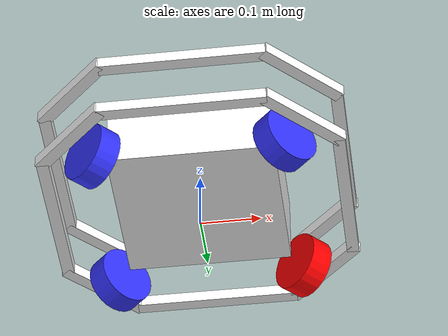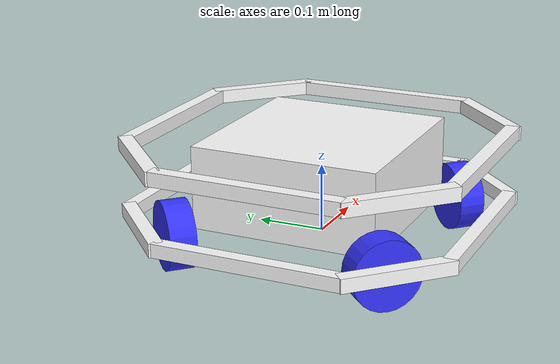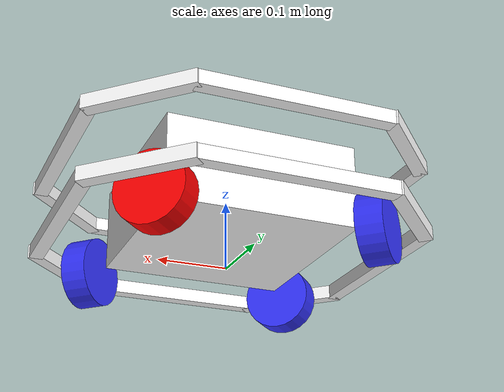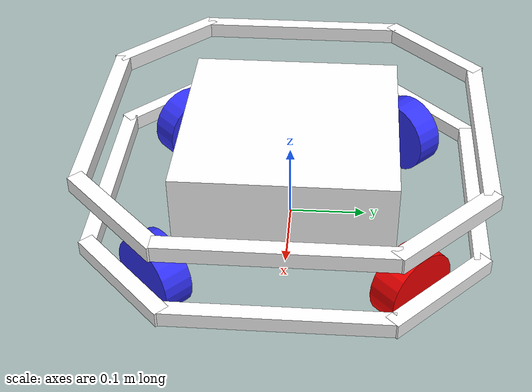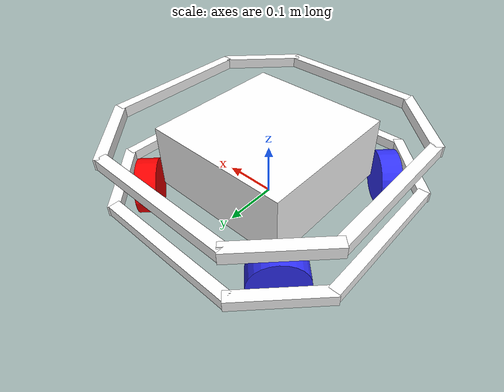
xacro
<?xml version="1.0"?>
<robot xmlns:xacro="http://www.ros.org/wiki/xacro" name="robot">

    <xacro:include filename="inertial_macros.xacro" />
    <xacro:include filename="materials.xacro" />

    <xacro:include filename="robot_core.xacro" />
    <xacro:include filename="robot_level_1.xacro" />
    <xacro:include filename="robot_level_2.xacro" />
    <xacro:include filename="robot_level_3.xacro" />

</robot>

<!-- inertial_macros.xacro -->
<robot xmlns:xacro="http://www.ros.org/wiki/xacro">

    <!-- Specify some standard inertial calculations
    https://en.wikipedia.org/wiki/List_of_moments_of_inertia -->
    <!-- These make use of xacro's mathematical functionality -->

    <xacro:macro name="inertial_cylinder" params="mass length radius *origin">
        <inertial>
            <xacro:insert_block name="origin" />
            <mass value="${mass}" />
            <inertia
                ixx="${(1/12) * mass * (3*radius*radius + length*length)}"
                ixy="0.0"
                iyy="${(1/12) * mass * (3*radius*radius + length*length)}"
                iyz="0.0"
                izz="${(1/2) * mass * (radius*radius)}"
            />
        </inertial>
    </xacro:macro>

    <xacro:macro name="inertial_box" params="mass x y z *origin">
        <inertial>
            <xacro:insert_block name="origin" />
            <mass value="${mass}" />
            <inertia
                ixx="${(1/12) * mass * (y*y + z*z)}"
                ixy="0.0"
                ixz="0.0"
                iyy="${(1/12) * mass * (x*x + z*z)}"
                iyz="0.0"
                izz="${(1/12) * mass * (x*x + y*y)}"
            />
        </inertial>
    </xacro:macro>

    <xacro:macro name="inertial_sphere" params="mass radius *origin">
        <inertial>
            <xacro:insert_block name="origin" />
            <mass value="${mass}" />
            <inertia
                ixx="${(2/5) * mass * (radius*radius)}"
                ixy="0.0"
                ixz="0.0"
                iyy="${(2/5) * mass * (radius*radius)}"
                iyz="0.0"
                izz="${(2/5) * mass * (radius*radius)}"
            />
        </inertial>
    </xacro:macro>

</robot>

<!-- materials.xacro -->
<robot xmlns:xacro="http://www.ros.org/wiki/xacro">

    <material name="black">
        <color rgba="0 0 0 1" />
    </material>

    <material name="white">
        <color rgba="1 1 1 1" />
    </material>

    <material name="red">
        <color rgba="1 0 0 1" />
    </material>

    <material name="green">
        <color rgba="0.2 1 0.2 1" />
    </material>

    <material name="blue">
        <color rgba="0.2 0.2 1 1" />
    </material>

    <material name="yellow">
        <color rgba="1 1 0.6 1" />
    </material>

    <material name="teal">
        <color rgba="0.2 0.8 0.7 1" />
    </material>

    <material name="raspberry">
        <color rgba="0.7 0.1 0.4 1" />
    </material>

</robot>

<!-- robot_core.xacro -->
<robot xmlns:xacro="http://www.ros.org/wiki/xacro">

    <!-- ROBOT PROPERTIES -->
    <xacro:property name="metal_thickness" value="0.003" />
    <xacro:property name="metal_density" value="7850.0" />
    <!--
    mass = width * height * metal_thickness * metal_density
    mass = length * height * metal_thickness * metal_density
    -->

    <!-- CHASSIS & FRAME PROPS -->
    <xacro:property name="chassis_length" value="0.500" />
    <xacro:property name="chassis_width" value="0.500" />

    <xacro:property name="chassis_inner_length" value="0.272" />
    <xacro:property name="chassis_inner_width" value="0.272" />

    <xacro:property name="chassis_outer_side" value="0.272" />
    <xacro:property name="chassis_outer_corner" value="0.162" />
    <xacro:property name="chassis_outer_thickness" value="0.020" />

    <xacro:property name="chassis_height" value="0.120" />
    <xacro:property name="chassis_clearance" value="0.030" />

    <xacro:property name="chassis_empty_space_length" value="${(chassis_length - chassis_outer_thickness*4)/3}" />
    <xacro:property name="chassis_empty_space_width" value="${(chassis_width - chassis_outer_thickness*4)/3}" />

    <!-- WHEEL PROPS -->
    <xacro:property name="wheel_radius" value="0.050" />
    <xacro:property name="wheel_thickness" value="0.038" />

    <!-- BASE LINK -->
    <link name="base_link"></link>

    <!-- CHASSIS LINK -->
    <joint name="chassis_joint" type="fixed">
        <parent link="base_link" />
        <child link="chassis" />
        <origin xyz="0 0 0" />
    </joint>

    <link name="chassis">
        <visual>
            <origin xyz="0 0 ${chassis_height/2 + chassis_clearance}" />
            <geometry>
                <box size="${chassis_inner_length} ${chassis_inner_width} ${chassis_height}" />
            </geometry>
            <material name="white" />
        </visual>
        <collision>
            <origin xyz="0 0 ${chassis_height/2 + chassis_clearance}" />
            <geometry>
                <box size="${chassis_inner_length} ${chassis_inner_width} ${chassis_height}" />
            </geometry>
        </collision>
        <xacro:inertial_box mass="${chassis_inner_width * chassis_inner_length * metal_thickness * metal_density}"
            x="${chassis_inner_length}" y="${chassis_inner_width}" z="${chassis_height}">
            <origin xyz="0 0 ${chassis_height/2 + chassis_clearance}" rpy="0 0 0" />
        </xacro:inertial_box>
    </link>

    <gazebo reference="chassis">
        <material>Gazebo/White</material>
    </gazebo>

    <!-- WHEELS -->
    <!-- left wheel -->
    <joint name="left_wheel_joint" type="continuous">
        <parent link="base_link" />
        <child link="left_wheel" />
        <origin
            xyz="-${chassis_inner_length/2 + wheel_thickness/2} ${chassis_inner_width/2 + wheel_thickness/2} ${wheel_radius/2}"
            rpy="-${pi/2} 0 0.785" />
        <axis xyz="0 0 -1" />
    </joint>

    <link name="left_wheel">
        <visual>
            <geometry>
                <cylinder radius="${wheel_radius}" length="${wheel_thickness}" />
            </geometry>
            <material name="blue" />
        </visual>
        <collision>
            <geometry>
                <sphere radius="${wheel_radius}" />
            </geometry>
        </collision>{pi/2} <xacro:inertial_cylinder
            mass="1.0" length="${wheel_thickness}" radius="${wheel_radius}">
            <origin xyz="0 0 0" rpy="0 0 0" />
        </xacro:inertial_cylinder>
    </link>

    <gazebo reference="left_wheel">
        <material>Gazebo/Blue</material>
    </gazebo>

    <!-- front wheel -->
    <joint name="front_wheel_joint" type="continuous">
        <parent link="base_link" />
        <child link="front_wheel" />
        <origin
            xyz="${chassis_inner_length/2 + wheel_thickness/2} ${chassis_inner_width/2 + wheel_thickness/2} ${wheel_radius/2}"
            rpy="-${pi/2} 0 -0.785" />
        <axis xyz="0 0 -1" />
    </joint>

    <link name="front_wheel">
        <visual>
            <geometry>
                <cylinder radius="${wheel_radius}" length="${wheel_thickness}" />
            </geometry>
            <material name="red" />
        </visual>
        <collision>
            <geometry>
                <sphere radius="${wheel_radius}" />
            </geometry>
        </collision>
        <xacro:inertial_cylinder mass="1.0" length="${wheel_thickness}" radius="${wheel_radius}">
            <origin xyz="0 0 0" rpy="0 0 0" />
        </xacro:inertial_cylinder>
    </link>

    <gazebo reference="front_wheel">
        <material>Gazebo/Red</material>
    </gazebo>

    <!-- right wheel -->
    <joint name="right_wheel_joint" type="continuous">
        <parent link="base_link" />
        <child link="right_wheel" />
        <origin
            xyz="${chassis_inner_length/2 + wheel_thickness/2} -${chassis_inner_width/2 + wheel_thickness/2} ${wheel_radius/2}"
            rpy="${pi/2} ${pi} 0.785" />
        <axis xyz="0 0 -1" />
    </joint>

    <link name="right_wheel">
        <visual>
            <geometry>
                <cylinder radius="${wheel_radius}" length="${wheel_thickness}" />
            </geometry>
            <material name="blue" />
        </visual>
        <collision>
            <geometry>
                <sphere radius="${wheel_radius}" />
            </geometry>
        </collision>
        <xacro:inertial_cylinder mass="1.0" length="${wheel_thickness}" radius="${wheel_radius}">
            <origin xyz="0 0 0" rpy="0 0 0" />
        </xacro:inertial_cylinder>
    </link>

    <gazebo reference="right_wheel">
        <material>Gazebo/Blue</material>
    </gazebo>

    <!-- back wheel -->
    <joint name="back_wheel_joint" type="continuous">
        <parent link="base_link" />
        <child link="back_wheel" />
        <origin
            xyz="-${chassis_inner_length/2 + wheel_thickness/2} -${chassis_inner_width/2 + wheel_thickness/2} ${wheel_radius/2}"
            rpy="${pi/2} ${pi} -0.785" />
        <axis xyz="0 0 -1" />
    </joint>

    <link name="back_wheel">
        <visual>
            <geometry>
                <cylinder radius="${wheel_radius}" length="${wheel_thickness}" />
            </geometry>
            <material name="blue" />
        </visual>
        <collision>
            <geometry>
                <sphere radius="${wheel_radius}" />
            </geometry>
        </collision>
        <xacro:inertial_cylinder mass="1.0" length="${wheel_thickness}" radius="${wheel_radius}">
            <origin xyz="0 0 0" rpy="0 0 0" />
        </xacro:inertial_cylinder>
    </link>

    <gazebo reference="back_wheel">
        <material>Gazebo/Blue</material>
    </gazebo>

    <!--
        FRAME
    -->
    <!-- CORNERS -->
    <!-- left corner -->
    <joint name="frame_left_corner_top_joint" type="fixed">
        <parent link="base_link" />
        <child link="frame_left_corner_top" />
        <origin
            xyz="-${chassis_length/2 - chassis_empty_space_length/2 + chassis_outer_thickness*135/360} ${chassis_width/2 - chassis_empty_space_width/2 + chassis_outer_thickness*135/360} ${chassis_height + chassis_clearance - chassis_outer_thickness/2}"
            rpy="0 0 0.785" />
    </joint>

    <link name="frame_left_corner_top">
        <visual>
            <geometry>
                <box size="${chassis_outer_corner} ${chassis_outer_thickness} ${chassis_outer_thickness}" />
            </geometry>
            <material name="white" />
        </visual>
        <collision>
            <geometry>
                <box size="${chassis_outer_corner} ${chassis_outer_thickness} ${chassis_outer_thickness}" />
            </geometry>
        </collision>
        <xacro:inertial_box
            mass="${chassis_outer_corner * chassis_outer_thickness * metal_thickness * 4 * metal_density}"
            x="${chassis_outer_corner}" y="${chassis_outer_thickness}"
            z="${chassis_outer_thickness}">
            <origin xyz="0 0 0" rpy="0 0 0" />
        </xacro:inertial_box>
    </link>

    <gazebo reference="frame_left_corner_top">
        <material>Gazebo/White</material>
    </gazebo>

    <joint name="frame_left_corner_bottom_joint" type="fixed">
        <parent link="base_link" />
        <child link="frame_left_corner_bottom" />
        <origin
            xyz="-${chassis_length/2 - chassis_empty_space_length/2 + chassis_outer_thickness*135/360} ${chassis_width/2 - chassis_empty_space_width/2 + chassis_outer_thickness*135/360} ${chassis_clearance + chassis_outer_thickness/2}"
            rpy="0 0 0.785" />
    </joint>

    <link name="frame_left_corner_bottom">
        <visual>
            <geometry>
                <box size="${chassis_outer_corner} ${chassis_outer_thickness} ${chassis_outer_thickness}" />
            </geometry>
            <material name="white" />
        </visual>
        <collision>
            <geometry>
                <box size="${chassis_outer_corner} ${chassis_outer_thickness} ${chassis_outer_thickness}" />
            </geometry>
        </collision>
        <xacro:inertial_box
            mass="${chassis_outer_corner * chassis_outer_thickness * metal_thickness * 4 * metal_density}"
            x="${chassis_outer_corner}" y="${chassis_outer_thickness}"
            z="${chassis_outer_thickness}">
            <origin xyz="0 0 0" rpy="0 0 0" />
        </xacro:inertial_box>
    </link>

    <gazebo reference="frame_left_corner_bottom">
        <material>Gazebo/White</material>
    </gazebo>

    <!-- front corner -->
    <joint name="frame_front_corner_top_joint" type="fixed">
        <parent link="base_link" />
        <child link="frame_front_corner_top" />
        <origin
            xyz="${chassis_length/2 - chassis_empty_space_length/2 + chassis_outer_thickness*135/360} ${chassis_width/2 - chassis_empty_space_width/2 + chassis_outer_thickness*135/360} ${chassis_height + chassis_clearance - chassis_outer_thickness/2}"
            rpy="0 0 -0.785" />
    </joint>

    <link name="frame_front_corner_top">
        <visual>
            <geometry>
                <box size="${chassis_outer_corner} ${chassis_outer_thickness} ${chassis_outer_thickness}" />
            </geometry>
            <material name="white" />
        </visual>
        <collision>
            <geometry>
                <box size="${chassis_outer_corner} ${chassis_outer_thickness} ${chassis_outer_thickness}" />
            </geometry>
        </collision>
        <xacro:inertial_box
            mass="${chassis_outer_corner * chassis_outer_thickness * metal_thickness * 4 * metal_density}"
            x="${chassis_outer_corner}" y="${chassis_outer_thickness}"
            z="${chassis_outer_thickness}">
            <origin xyz="0 0 0" rpy="0 0 0" />
        </xacro:inertial_box>
    </link>

    <gazebo reference="frame_front_corner_top">
        <material>Gazebo/White</material>
    </gazebo>

    <joint name="frame_front_corner_bottom_joint" type="fixed">
        <parent link="base_link" />
        <child link="frame_front_corner_bottom" />
        <origin
            xyz="${chassis_length/2 - chassis_empty_space_length/2 + chassis_outer_thickness*135/360} ${chassis_width/2 - chassis_empty_space_width/2 + chassis_outer_thickness*135/360} ${chassis_clearance + chassis_outer_thickness/2}"
            rpy="0 0 -0.785" />
    </joint>

    <link name="frame_front_corner_bottom">
        <visual>
            <geometry>
                <box size="${chassis_outer_corner} ${chassis_outer_thickness} ${chassis_outer_thickness}" />
            </geometry>
            <material name="white" />
        </visual>
        <collision>
            <geometry>
                <box size="${chassis_outer_corner} ${chassis_outer_thickness} ${chassis_outer_thickness}" />
            </geometry>
        </collision>
        <xacro:inertial_box
            mass="${chassis_outer_corner * chassis_outer_thickness * metal_thickness * 4 * metal_density}"
            x="${chassis_outer_corner}" y="${chassis_outer_thickness}"
            z="${chassis_outer_thickness}">
            <origin xyz="0 0 0" rpy="0 0 0" />
        </xacro:inertial_box>
    </link>

    <gazebo reference="frame_front_corner_bottom">
        <material>Gazebo/White</material>
    </gazebo>

    <!-- right corner -->
    <joint name="frame_right_corner_top_joint" type="fixed">
        <parent link="base_link" />
        <child link="frame_right_corner_top" />
        <origin
            xyz="${chassis_length/2 - chassis_empty_space_length/2 + chassis_outer_thickness*135/360} -${chassis_width/2 - chassis_empty_space_width/2 + chassis_outer_thickness*135/360} ${chassis_height + chassis_clearance - chassis_outer_thickness/2}"
            rpy="0 0 0.785" />
    </joint>

    <link name="frame_right_corner_top">
        <visual>
            <geometry>
                <box size="${chassis_outer_corner} ${chassis_outer_thickness} ${chassis_outer_thickness}" />
            </geometry>
            <material name="white" />
        </visual>
        <collision>
            <geometry>
                <box size="${chassis_outer_corner} ${chassis_outer_thickness} ${chassis_outer_thickness}" />
            </geometry>
        </collision>
        <xacro:inertial_box
            mass="${chassis_outer_corner * chassis_outer_thickness * metal_thickness * 4 * metal_density}"
            x="${chassis_outer_corner}" y="${chassis_outer_thickness}"
            z="${chassis_outer_thickness}">
            <origin xyz="0 0 0" rpy="0 0 0" />
        </xacro:inertial_box>
    </link>

    <gazebo reference="frame_right_corner_top">
        <material>Gazebo/White</material>
    </gazebo>

    <joint name="frame_right_corner_bottom_joint" type="fixed">
        <parent link="base_link" />
        <child link="frame_right_corner_bottom" />
        <origin
            xyz="${chassis_length/2 - chassis_empty_space_length/2 + chassis_outer_thickness*135/360} -${chassis_width/2 - chassis_empty_space_width/2 + chassis_outer_thickness*135/360} ${chassis_clearance + chassis_outer_thickness/2}"
            rpy="0 0 0.785" />
    </joint>

    <link name="frame_right_corner_bottom">
        <visual>
            <geometry>
                <box size="${chassis_outer_corner} ${chassis_outer_thickness} ${chassis_outer_thickness}" />
            </geometry>
            <material name="white" />
        </visual>
        <collision>
            <geometry>
                <box size="${chassis_outer_corner} ${chassis_outer_thickness} ${chassis_outer_thickness}" />
            </geometry>
        </collision>
        <xacro:inertial_box
            mass="${chassis_outer_corner * chassis_outer_thickness * metal_thickness * 4 * metal_density}"
            x="${chassis_outer_corner}" y="${chassis_outer_thickness}"
            z="${chassis_outer_thickness}">
            <origin xyz="0 0 0" rpy="0 0 0" />
        </xacro:inertial_box>
    </link>

    <gazebo reference="frame_right_corner_bottom">
        <material>Gazebo/White</material>
    </gazebo>

    <!-- back corner -->
    <joint name="frame_back_corner_top_joint" type="fixed">
        <parent link="base_link" />
        <child link="frame_back_corner_top" />
        <origin
            xyz="-${chassis_length/2 - chassis_empty_space_length/2 + chassis_outer_thickness*135/360} -${chassis_width/2 - chassis_empty_space_width/2 + chassis_outer_thickness*135/360} ${chassis_height + chassis_clearance - chassis_outer_thickness/2}"
            rpy="0 0 -0.785" />
    </joint>

    <link name="frame_back_corner_top">
        <visual>
            <geometry>
                <box size="${chassis_outer_corner} ${chassis_outer_thickness} ${chassis_outer_thickness}" />
            </geometry>
            <material name="white" />
        </visual>
        <collision>
            <geometry>
                <box size="${chassis_outer_corner} ${chassis_outer_thickness} ${chassis_outer_thickness}" />
            </geometry>
        </collision>
        <xacro:inertial_box
            mass="${chassis_outer_corner * chassis_outer_thickness * metal_thickness * 4 * metal_density}"
            x="${chassis_outer_corner}" y="${chassis_outer_thickness}"
            z="${chassis_outer_thickness}">
            <origin xyz="0 0 0" rpy="0 0 0" />
        </xacro:inertial_box>
    </link>

    <gazebo reference="frame_back_corner_top">
        <material>Gazebo/White</material>
    </gazebo>

    <joint name="frame_back_corner_bottom_joint" type="fixed">
        <parent link="base_link" />
        <child link="frame_back_corner_bottom" />
        <origin
            xyz="-${chassis_length/2 - chassis_empty_space_length/2 + chassis_outer_thickness*135/360} -${chassis_width/2 - chassis_empty_space_width/2 + chassis_outer_thickness*135/360} ${chassis_clearance + chassis_outer_thickness/2}"
            rpy="0 0 -0.785" />
    </joint>

    <link name="frame_back_corner_bottom">
        <visual>
            <geometry>
                <box size="${chassis_outer_corner} ${chassis_outer_thickness} ${chassis_outer_thickness}" />
            </geometry>
            <material name="white" />
        </visual>
        <collision>
            <geometry>
                <box size="${chassis_outer_corner} ${chassis_outer_thickness} ${chassis_outer_thickness}" />
            </geometry>
        </collision>
        <xacro:inertial_box
            mass="${chassis_outer_corner * chassis_outer_thickness * metal_thickness * 4 * metal_density}"
            x="${chassis_outer_corner}" y="${chassis_outer_thickness}"
            z="${chassis_outer_thickness}">
            <origin xyz="0 0 0" rpy="0 0 0" />
        </xacro:inertial_box>
    </link>

    <gazebo reference="frame_back_corner_bottom">
        <material>Gazebo/White</material>
    </gazebo>

    <!-- SIDES -->
    <!-- left-front side -->
    <joint name="frame_left_front_side_top_joint" type="fixed">
        <parent link="base_link" />
        <child link="frame_left_front_side_top" />
        <origin
            xyz="0 ${chassis_width/2 - chassis_outer_thickness/2} ${chassis_height + chassis_clearance - chassis_outer_thickness/2}"
            rpy="0 0 0" />
    </joint>

    <link name="frame_left_front_side_top">
        <visual>
            <geometry>
                <box size="${chassis_outer_side} ${chassis_outer_thickness} ${chassis_outer_thickness}" />
            </geometry>
            <material name="white" />
        </visual>
        <collision>
            <geometry>
                <box size="${chassis_outer_side} ${chassis_outer_thickness} ${chassis_outer_thickness}" />
            </geometry>
        </collision>
        <xacro:inertial_box
            mass="${chassis_outer_side * chassis_outer_thickness * metal_thickness * 4 * metal_density}"
            x="${chassis_outer_side}" y="${chassis_outer_thickness}"
            z="${chassis_outer_thickness}">
            <origin xyz="0 0 0" rpy="0 0 0" />
        </xacro:inertial_box>
    </link>

    <gazebo reference="frame_left_front_side_top">
        <material>Gazebo/White</material>
    </gazebo>

    <joint name="frame_left_front_side_bottom_joint" type="fixed">
        <parent link="base_link" />
        <child link="frame_left_front_side_bottom" />
        <origin
            xyz="0 ${chassis_width/2 - chassis_outer_thickness/2} ${chassis_clearance + chassis_outer_thickness/2}"
            rpy="0 0 0" />
    </joint>

    <link name="frame_left_front_side_bottom">
        <visual>
            <geometry>
                <box size="${chassis_outer_side} ${chassis_outer_thickness} ${chassis_outer_thickness}" />
            </geometry>
            <material name="white" />
        </visual>
        <collision>
            <geometry>
                <box size="${chassis_outer_side} ${chassis_outer_thickness} ${chassis_outer_thickness}" />
            </geometry>
        </collision>
        <xacro:inertial_box
            mass="${chassis_outer_side * chassis_outer_thickness * metal_thickness * 4 * metal_density}"
            x="${chassis_outer_side}" y="${chassis_outer_thickness}"
            z="${chassis_outer_thickness}">
            <origin xyz="0 0 0" rpy="0 0 0" />
        </xacro:inertial_box>
    </link>

    <gazebo reference="frame_left_front_side_bottom">
        <material>Gazebo/White</material>
    </gazebo>

    <!-- front-right side -->
    <joint name="frame_front_right_side_top_joint" type="fixed">
        <parent link="base_link" />
        <child link="frame_front_right_side_top" />
        <origin
            xyz="${chassis_length/2 - chassis_outer_thickness/2} 0 ${chassis_height + chassis_clearance - chassis_outer_thickness/2}"
            rpy="0 0 0" />
    </joint>

    <link name="frame_front_right_side_top">
        <visual>
            <geometry>
                <box size="${chassis_outer_thickness} ${chassis_outer_side} ${chassis_outer_thickness}" />
            </geometry>
            <material name="white" />
        </visual>
        <collision>
            <geometry>
                <box size="${chassis_outer_thickness} ${chassis_outer_side} ${chassis_outer_thickness}" />
            </geometry>
        </collision>
        <xacro:inertial_box
            mass="${chassis_outer_side * chassis_outer_thickness * metal_thickness * 4 * metal_density}"
            x="${chassis_outer_thickness}" y="${chassis_outer_side}"
            z="${chassis_outer_thickness}">
            <origin xyz="0 0 0" rpy="0 0 0" />
        </xacro:inertial_box>
    </link>

    <gazebo reference="frame_front_right_side_top">
        <material>Gazebo/White</material>
    </gazebo>

    <joint name="frame_front_right_side_bottom_joint" type="fixed">
        <parent link="base_link" />
        <child link="frame_front_right_side_bottom" />
        <origin
            xyz="${chassis_length/2 - chassis_outer_thickness/2} 0 ${chassis_clearance + chassis_outer_thickness/2}"
            rpy="0 0 0" />
    </joint>

    <link name="frame_front_right_side_bottom">
        <visual>
            <geometry>
                <box size="${chassis_outer_thickness} ${chassis_outer_side} ${chassis_outer_thickness}" />
            </geometry>
            <material name="white" />
        </visual>
        <collision>
            <geometry>
                <box size="${chassis_outer_thickness} ${chassis_outer_side} ${chassis_outer_thickness}" />
            </geometry>
        </collision>
        <xacro:inertial_box
            mass="${chassis_outer_side * chassis_outer_thickness * metal_thickness * 4 * metal_density}"
            x="${chassis_outer_thickness}" y="${chassis_outer_side}"
            z="${chassis_outer_thickness}">
            <origin xyz="0 0 0" rpy="0 0 0" />
        </xacro:inertial_box>
    </link>

    <gazebo reference="frame_front_right_side_bottom">
        <material>Gazebo/White</material>
    </gazebo>

    <!-- right-back side -->
    <joint name="frame_right_back_side_top_joint" type="fixed">
        <parent link="base_link" />
        <child link="frame_right_back_side_top" />
        <origin
            xyz="0 -${chassis_width/2 - chassis_outer_thickness/2} ${chassis_height + chassis_clearance - chassis_outer_thickness/2}"
            rpy="0 0 0" />
    </joint>

    <link name="frame_right_back_side_top">
        <visual>
            <geometry>
                <box size="${chassis_outer_side} ${chassis_outer_thickness} ${chassis_outer_thickness}" />
            </geometry>
            <material name="white" />
        </visual>
        <collision>
            <geometry>
                <box size="${chassis_outer_side} ${chassis_outer_thickness} ${chassis_outer_thickness}" />
            </geometry>
        </collision>
        <xacro:inertial_box
            mass="${chassis_outer_side * chassis_outer_thickness * metal_thickness * 4 * metal_density}"
            x="${chassis_outer_side}" y="${chassis_outer_thickness}"
            z="${chassis_outer_thickness}">
            <origin xyz="0 0 0" rpy="0 0 0" />
        </xacro:inertial_box>
    </link>

    <gazebo reference="frame_right_back_side_top">
        <material>Gazebo/White</material>
    </gazebo>

    <joint name="frame_right_back_side_bottom_joint" type="fixed">
        <parent link="base_link" />
        <child link="frame_right_back_side_bottom" />
        <origin
            xyz="0 -${chassis_width/2 - chassis_outer_thickness/2} ${chassis_clearance + chassis_outer_thickness/2}"
            rpy="0 0 0" />
    </joint>

    <link name="frame_right_back_side_bottom">
        <visual>
            <geometry>
                <box size="${chassis_outer_side} ${chassis_outer_thickness} ${chassis_outer_thickness}" />
            </geometry>
            <material name="white" />
        </visual>
        <collision>
            <geometry>
                <box size="${chassis_outer_side} ${chassis_outer_thickness} ${chassis_outer_thickness}" />
            </geometry>
        </collision>
        <xacro:inertial_box
            mass="${chassis_outer_side * chassis_outer_thickness * metal_thickness * 4 * metal_density}"
            x="${chassis_outer_side}" y="${chassis_outer_thickness}"
            z="${chassis_outer_thickness}">
            <origin xyz="0 0 0" rpy="0 0 0" />
        </xacro:inertial_box>
    </link>

    <gazebo reference="frame_right_back_side_bottom">
        <material>Gazebo/White</material>
    </gazebo>

    <!-- back-left side -->
    <joint name="frame_back_left_side_top_joint" type="fixed">
        <parent link="base_link" />
        <child link="frame_back_left_side_top" />
        <origin
            xyz="-${chassis_length/2 - chassis_outer_thickness/2} 0 ${chassis_height + chassis_clearance - chassis_outer_thickness/2}"
            rpy="0 0 0" />
    </joint>

    <link name="frame_back_left_side_top">
        <visual>
            <geometry>
                <box size="${chassis_outer_thickness} ${chassis_outer_side} ${chassis_outer_thickness}" />
            </geometry>
            <material name="white" />
        </visual>
        <collision>
            <geometry>
                <box size="${chassis_outer_thickness} ${chassis_outer_side} ${chassis_outer_thickness}" />
            </geometry>
        </collision>
        <xacro:inertial_box
            mass="${chassis_outer_side * chassis_outer_thickness * metal_thickness * 4 * metal_density}"
            x="${chassis_outer_thickness}" y="${chassis_outer_side}"
            z="${chassis_outer_thickness}">
            <origin xyz="0 0 0" rpy="0 0 0" />
        </xacro:inertial_box>
    </link>

    <gazebo reference="frame_back_left_side_top">
        <material>Gazebo/White</material>
    </gazebo>

    <joint name="frame_back_left_side_bottom_joint" type="fixed">
        <parent link="base_link" />
        <child link="frame_back_left_side_bottom" />
        <origin
            xyz="-${chassis_length/2 - chassis_outer_thickness/2} 0 ${chassis_clearance + chassis_outer_thickness/2}"
            rpy="0 0 0" />
    </joint>

    <link name="frame_back_left_side_bottom">
        <visual>
            <geometry>
                <box size="${chassis_outer_thickness} ${chassis_outer_side} ${chassis_outer_thickness}" />
            </geometry>
            <material name="white" />
        </visual>
        <collision>
            <geometry>
                <box size="${chassis_outer_thickness} ${chassis_outer_side} ${chassis_outer_thickness}" />
            </geometry>
        </collision>
        <xacro:inertial_box
            mass="${chassis_outer_side * chassis_outer_thickness * metal_thickness * 4 * metal_density}"
            x="${chassis_outer_thickness}" y="${chassis_outer_side}"
            z="${chassis_outer_thickness}">
            <origin xyz="0 0 0" rpy="0 0 0" />
        </xacro:inertial_box>
    </link>

    <gazebo reference="frame_back_left_side_bottom">
        <material>Gazebo/White</material>
    </gazebo>

</robot>
